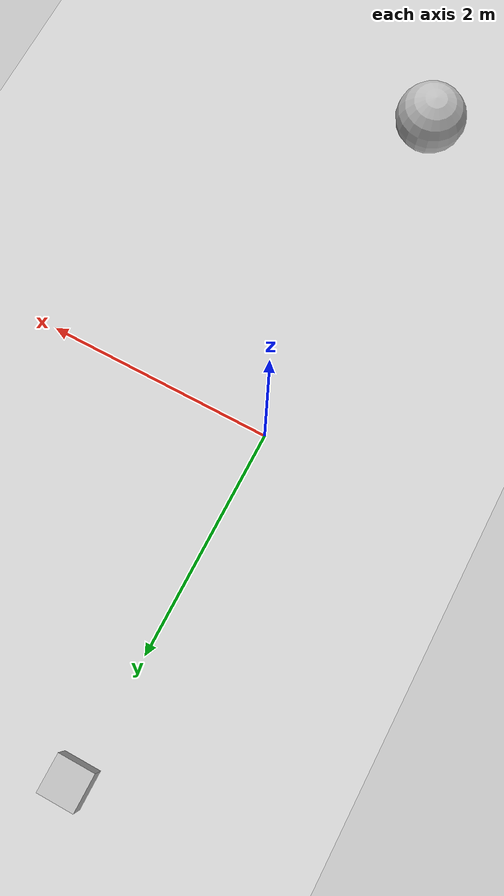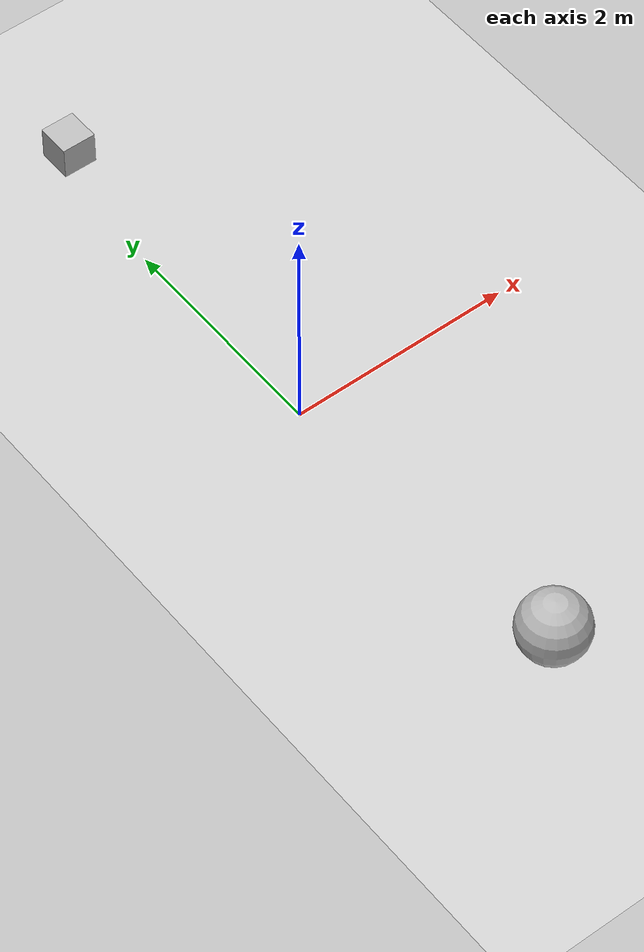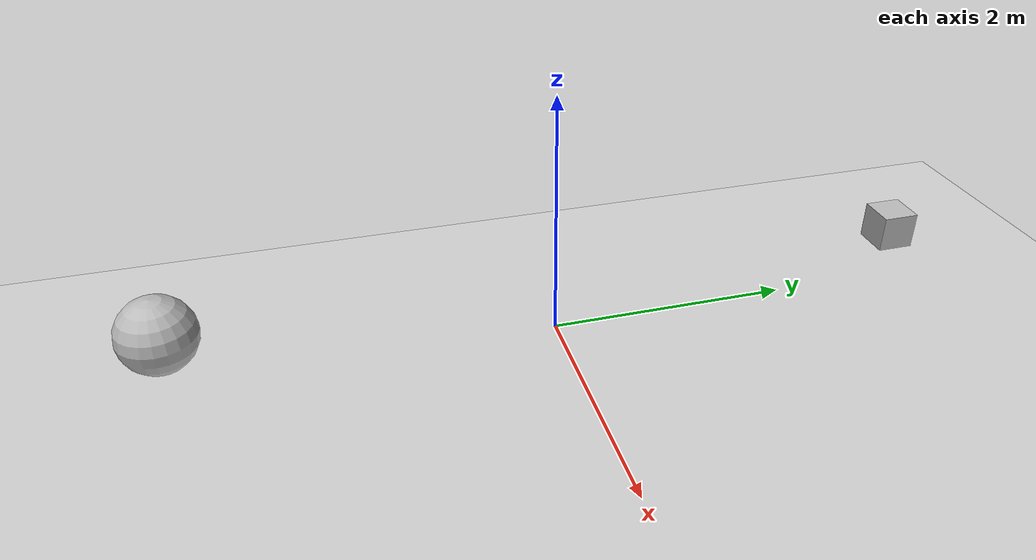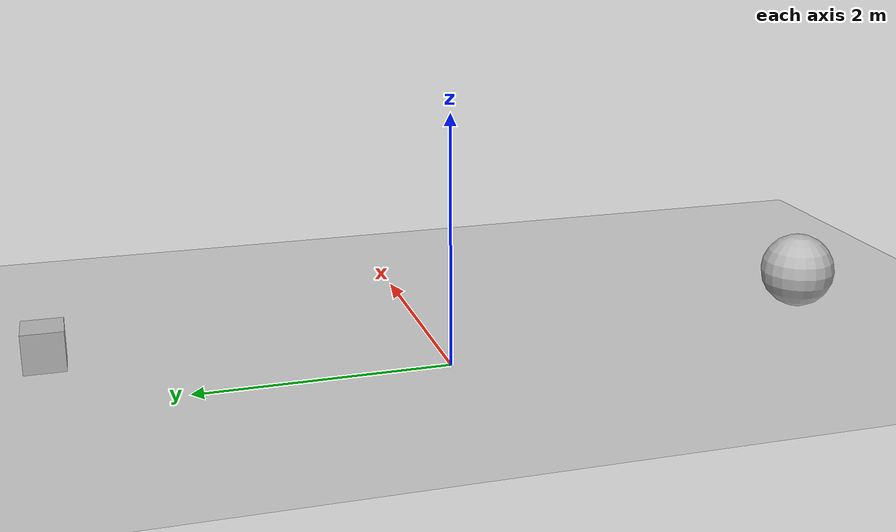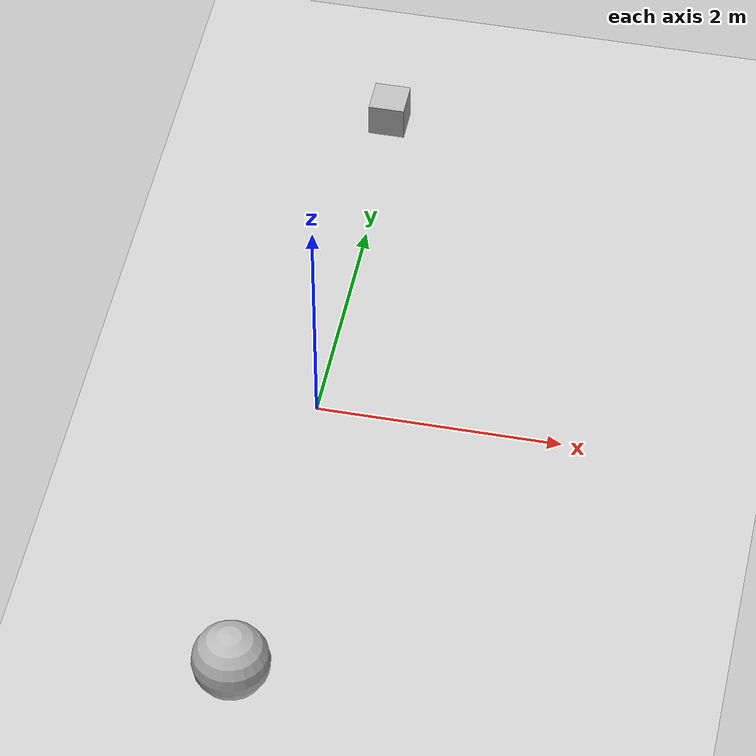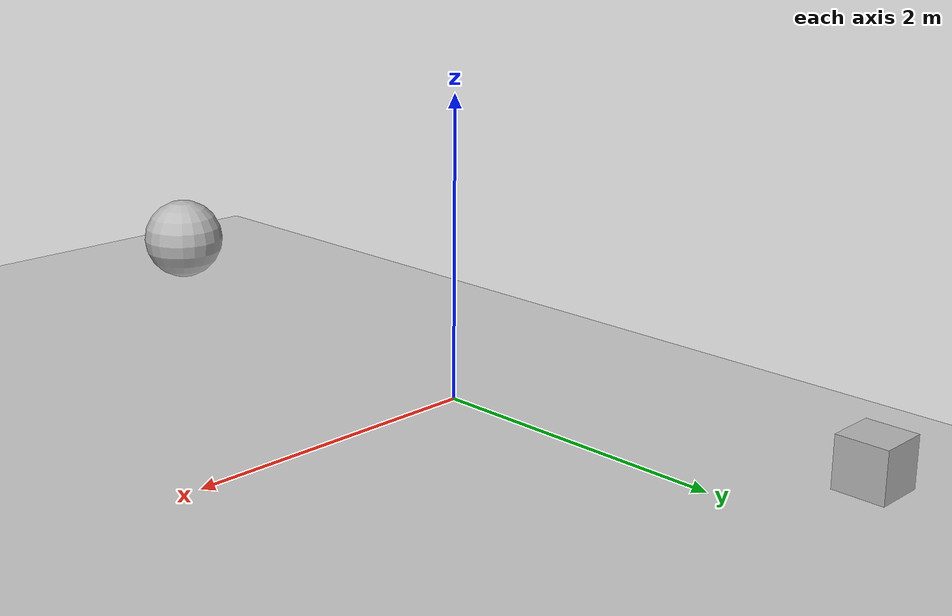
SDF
<?xml version="1.0"?>
<sdf version="1.6">
  <world name="default">
    <include>
      <uri>model://ground_plane</uri>
    </include>
    <include>
      <uri>model://sun</uri>
    </include>
    <model name="A">
      <pose>0 3 0.5 0 0 1.57</pose>
      <link name="linkA">
        <collision name="collision">
          <geometry>
            <box>
              <size>0.3 0.3 0.3</size>
            </box>
          </geometry>
        </collision>
        <visual name="visual">
          <geometry>
            <box>
              <size>0.3 0.3 0.3</size>
            </box>
          </geometry>
        </visual>
      </link>
    </model>
    <model name="B">
      <pose>0 -3 0.5 0 0 1.57</pose>
      <link name="linkB">
        <collision name="collision">
          <geometry>
            <sphere>
                <radius>0.3</radius>
            </sphere>
          </geometry>
        </collision>
        <visual name="visual">
          <geometry>
            <sphere>
                <radius>0.3</radius>
            </sphere>
          </geometry>
        </visual>
      </link>
    </model>
    <plugin name="gazebo_link_attacher" filename="libgazebo_link_attacher.so"/>
  </world>
</sdf>
